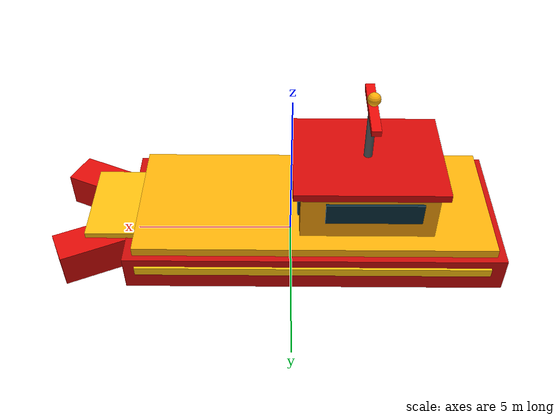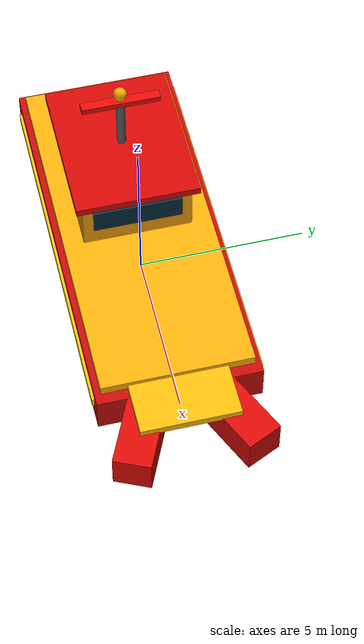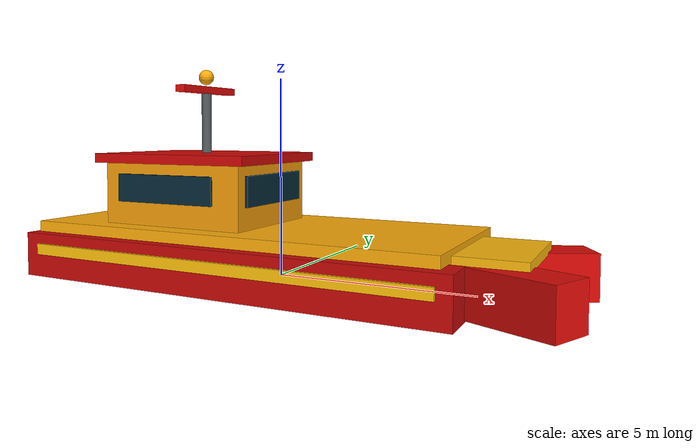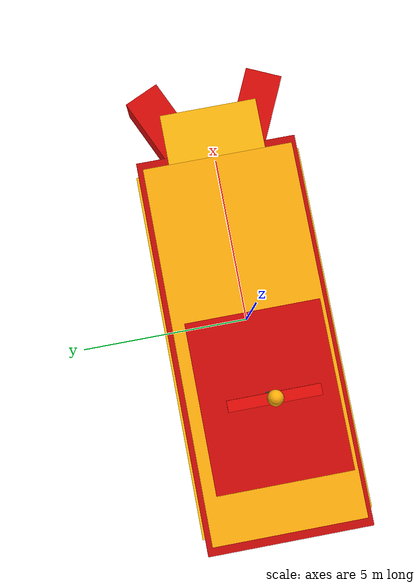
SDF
<?xml version="1.0"?>
<sdf version="1.10">
  <model name="sim332_friendly_ship">
    <pose>0 0 0.5 0 0 0</pose>
    <link name="hull">
      <gravity>false</gravity>
      <inertial>
        <mass>850</mass>
        <inertia>
          <ixx>1350</ixx><iyy>6900</iyy><izz>7800</izz>
        </inertia>
      </inertial>

      <!-- Approximately 1.5 times the regular 9 x 3.4 m task vessel. -->
      <collision name="main_hull_collision">
        <pose>-0.6 0 0 0 0 0</pose>
        <geometry><box><size>11.4 5.0 1.55</size></box></geometry>
      </collision>
      <collision name="bow_port_collision">
        <pose>5.65 1.15 0.02 0 0 0.43</pose>
        <geometry><box><size>3.2 1.25 1.45</size></box></geometry>
      </collision>
      <collision name="bow_starboard_collision">
        <pose>5.65 -1.15 0.02 0 0 -0.43</pose>
        <geometry><box><size>3.2 1.25 1.45</size></box></geometry>
      </collision>

      <visual name="red_lower_hull">
        <pose>-0.7 0 -0.12 0 0 0</pose>
        <geometry><box><size>11.6 4.8 1.15</size></box></geometry>
        <material><ambient>0.38 0.015 0.012 1</ambient><diffuse>0.78 0.035 0.025 1</diffuse><specular>0.55 0.18 0.12 1</specular></material>
      </visual>
      <visual name="red_bow_port">
        <pose>5.65 1.18 -0.10 0 0 0.43</pose>
        <geometry><box><size>3.35 1.10 1.10</size></box></geometry>
        <material><ambient>0.42 0.015 0.01 1</ambient><diffuse>0.86 0.04 0.025 1</diffuse><specular>0.58 0.18 0.12 1</specular></material>
      </visual>
      <visual name="red_bow_starboard">
        <pose>5.65 -1.18 -0.10 0 0 -0.43</pose>
        <geometry><box><size>3.35 1.10 1.10</size></box></geometry>
        <material><ambient>0.42 0.015 0.01 1</ambient><diffuse>0.86 0.04 0.025 1</diffuse><specular>0.58 0.18 0.12 1</specular></material>
      </visual>

      <visual name="yellow_main_deck">
        <pose>-0.7 0 0.63 0 0 0</pose>
        <geometry><box><size>11.0 4.45 0.28</size></box></geometry>
        <material><ambient>0.62 0.39 0.015 1</ambient><diffuse>1.0 0.68 0.035 1</diffuse><specular>0.48 0.42 0.20 1</specular></material>
      </visual>
      <visual name="yellow_foredeck">
        <pose>5.0 0 0.52 0 0 0</pose>
        <geometry><box><size>2.7 2.9 0.24</size></box></geometry>
        <material><ambient>0.68 0.43 0.02 1</ambient><diffuse>1.0 0.73 0.05 1</diffuse><specular>0.45 0.38 0.18 1</specular></material>
      </visual>

      <visual name="yellow_cabin">
        <pose>-2.3 0 1.55 0 0 0</pose>
        <geometry><box><size>4.1 3.25 1.65</size></box></geometry>
        <material><ambient>0.58 0.36 0.02 1</ambient><diffuse>0.96 0.62 0.035 1</diffuse><specular>0.38 0.33 0.18 1</specular></material>
      </visual>
      <visual name="red_cabin_roof">
        <pose>-2.3 0 2.48 0 0 0</pose>
        <geometry><box><size>4.55 3.65 0.24</size></box></geometry>
        <material><ambient>0.40 0.012 0.01 1</ambient><diffuse>0.82 0.03 0.02 1</diffuse><specular>0.48 0.16 0.12 1</specular></material>
      </visual>
      <visual name="front_window">
        <pose>-0.22 0 1.72 0 0 0</pose>
        <geometry><box><size>0.08 2.65 0.76</size></box></geometry>
        <material><ambient>0.01 0.05 0.07 1</ambient><diffuse>0.02 0.16 0.22 1</diffuse><specular>0.75 0.82 0.88 1</specular></material>
      </visual>
      <visual name="port_window">
        <pose>-2.45 1.65 1.72 0 0 0</pose>
        <geometry><box><size>2.9 0.08 0.72</size></box></geometry>
        <material><ambient>0.01 0.05 0.07 1</ambient><diffuse>0.02 0.16 0.22 1</diffuse><specular>0.75 0.82 0.88 1</specular></material>
      </visual>
      <visual name="starboard_window">
        <pose>-2.45 -1.65 1.72 0 0 0</pose>
        <geometry><box><size>2.9 0.08 0.72</size></box></geometry>
        <material><ambient>0.01 0.05 0.07 1</ambient><diffuse>0.02 0.16 0.22 1</diffuse><specular>0.75 0.82 0.88 1</specular></material>
      </visual>

      <visual name="yellow_port_stripe">
        <pose>-0.65 2.43 0.05 0 0 0</pose>
        <geometry><box><size>10.8 0.10 0.28</size></box></geometry>
        <material><ambient>0.72 0.46 0.02 1</ambient><diffuse>1.0 0.76 0.04 1</diffuse><emissive>0.08 0.04 0 1</emissive></material>
      </visual>
      <visual name="yellow_starboard_stripe">
        <pose>-0.65 -2.43 0.05 0 0 0</pose>
        <geometry><box><size>10.8 0.10 0.28</size></box></geometry>
        <material><ambient>0.72 0.46 0.02 1</ambient><diffuse>1.0 0.76 0.04 1</diffuse><emissive>0.08 0.04 0 1</emissive></material>
      </visual>

      <visual name="mast">
        <pose>-2.3 0 3.45 0 0 0</pose>
        <geometry><cylinder><radius>0.13</radius><length>1.7</length></cylinder></geometry>
        <material><ambient>0.15 0.16 0.17 1</ambient><diffuse>0.34 0.36 0.38 1</diffuse><specular>0.55 0.58 0.60 1</specular></material>
      </visual>
      <visual name="radar_bar">
        <pose>-2.3 0 4.28 0 0 0</pose>
        <geometry><box><size>0.28 2.3 0.18</size></box></geometry>
        <material><ambient>0.46 0.02 0.015 1</ambient><diffuse>0.90 0.04 0.025 1</diffuse><specular>0.50 0.18 0.12 1</specular></material>
      </visual>
      <visual name="beacon">
        <pose>-2.3 0 4.62 0 0 0</pose>
        <geometry><sphere><radius>0.20</radius></sphere></geometry>
        <material><ambient>0.8 0.35 0.01 1</ambient><diffuse>1 0.68 0.03 1</diffuse><emissive>0.55 0.22 0 1</emissive></material>
      </visual>
    </link>

    <plugin filename="libBoatWaveFollower.so" name="gz::sim::systems::BoatWaveFollower">
      <mean_z>0.78</mean_z>
      <heave_amplitude>0.05</heave_amplitude>
      <roll_amplitude>0.018</roll_amplitude>
      <pitch_amplitude>0.015</pitch_amplitude>
      <primary_frequency>0.9</primary_frequency>
      <secondary_frequency>1.35</secondary_frequency>
      <wave_number_x>0.24</wave_number_x>
      <wave_number_y>0.17</wave_number_y>
      <velocity_topic>cmd_vel</velocity_topic>
    </plugin>
  </model>
</sdf>
